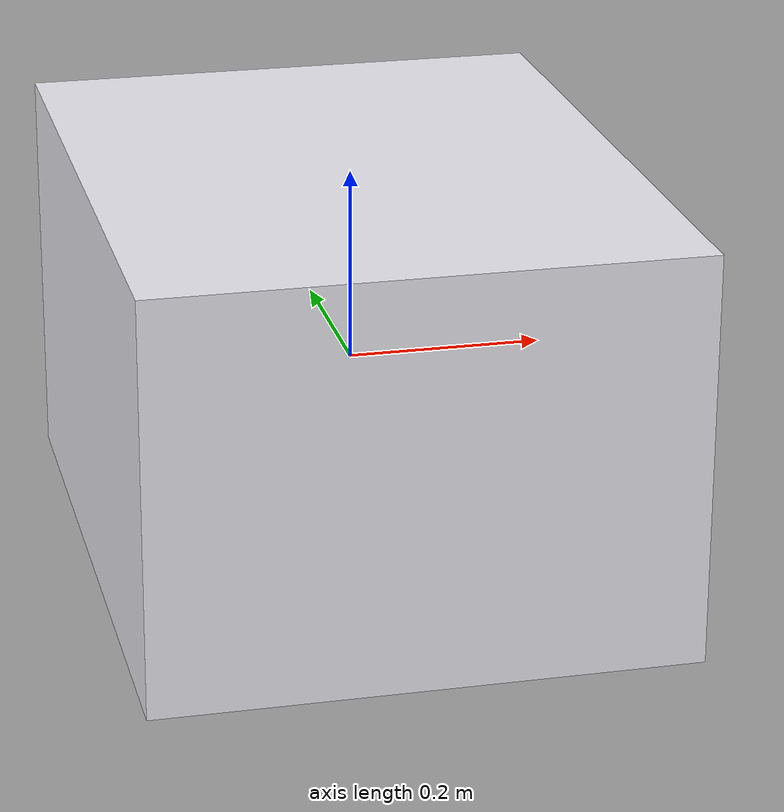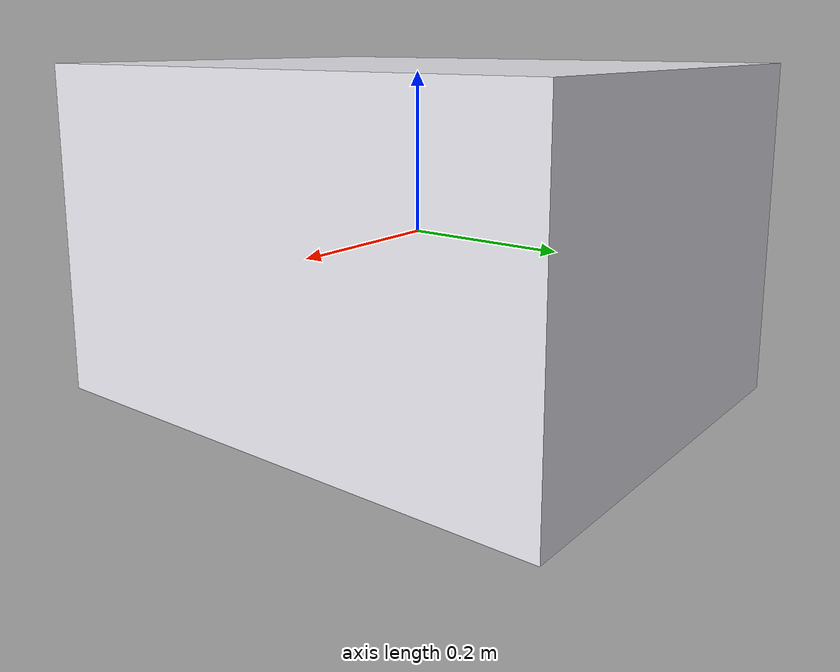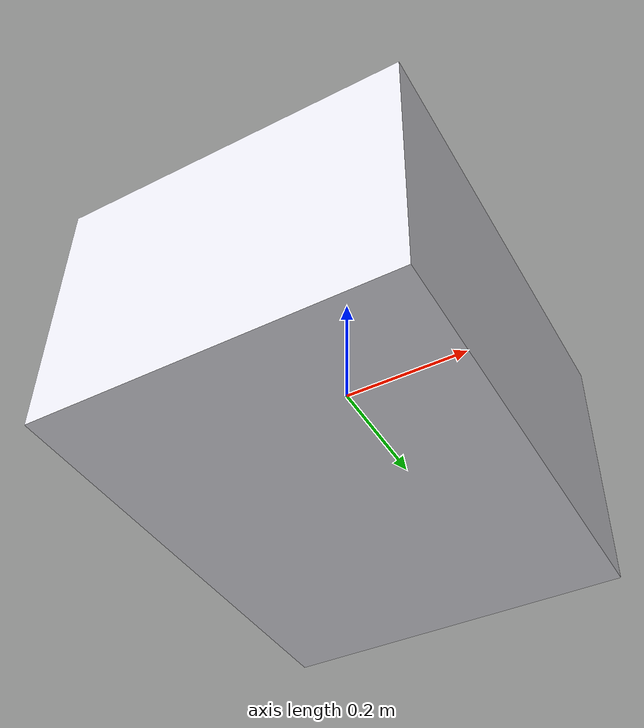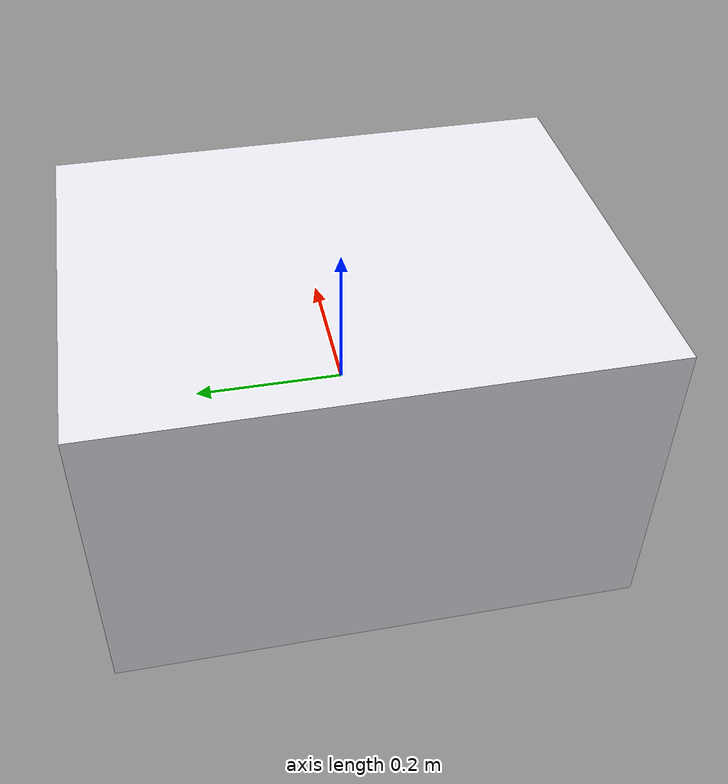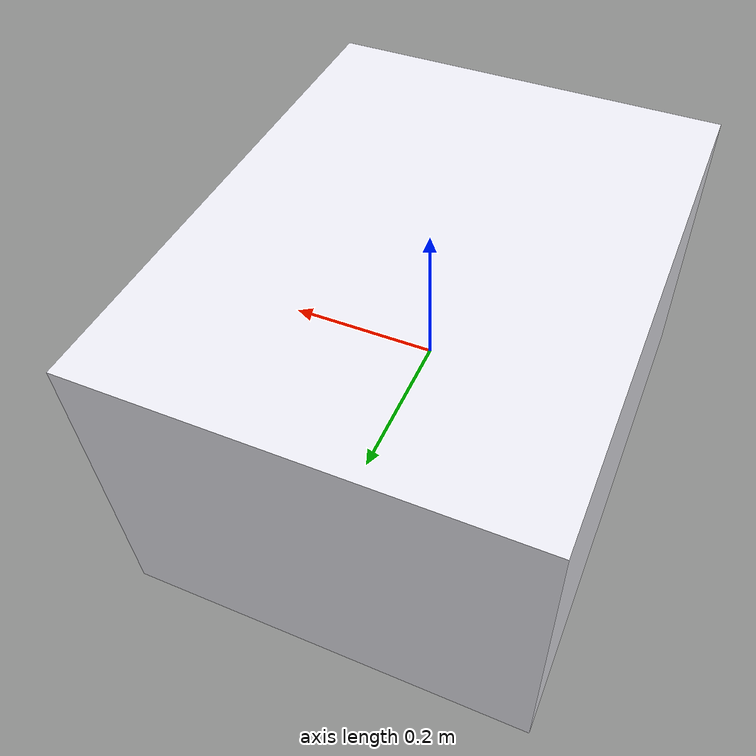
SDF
<?xml version="1.0"?>
<sdf version="1.6">
  <model name="toilet">
    <static>true</static>
    <link name="link">
      <collision name="col">
        <geometry>
          <box>
            <size>0.55 0.7 0.42</size>
          </box>
        </geometry>
      </collision>
      <visual name="vis">
        <geometry>
          <box>
            <size>0.55 0.7 0.42</size>
          </box>
        </geometry>
        <material>
          <ambient>0.92 0.92 0.95 1</ambient>
          <diffuse>0.92 0.92 0.95 1</diffuse>
        </material>
      </visual>
    </link>
  </model>
</sdf>
